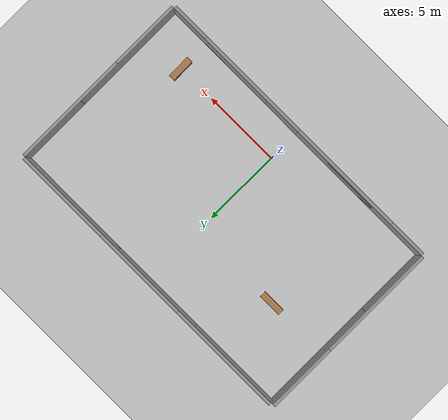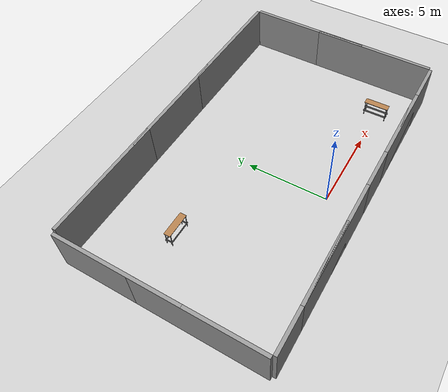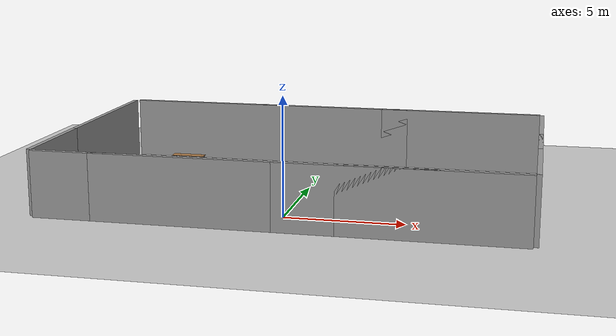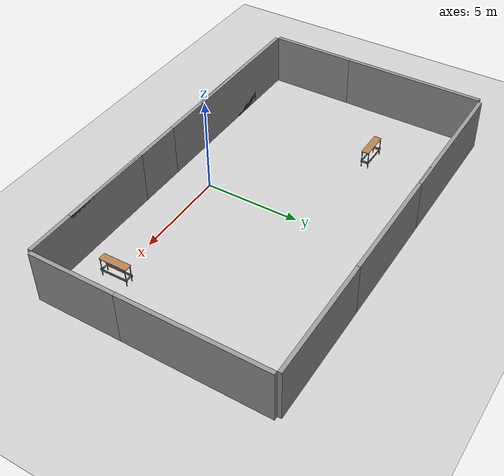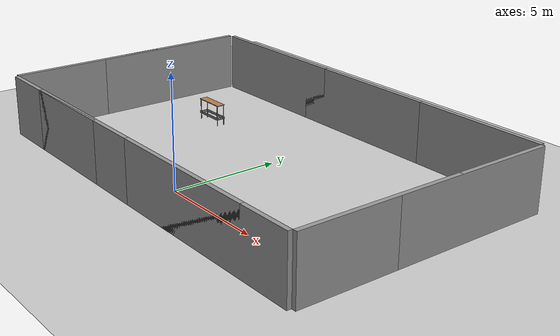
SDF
<sdf version="1.6">
 <world name="default">
  <plugin name="gazebo_occupancy_map" filename="libgazebo_2Dmap_plugin.so">
   <map_resolution>0.1</map_resolution>
   <map_height>2.8</map_height>
   <map_size_x>20</map_size_x>
   <map_size_y>20</map_size_y>
   <init_robot_x>0</init_robot_x>
   <init_robot_y>4</init_robot_y>
  </plugin>
  <light name="sun" type="directional">
   <cast_shadows>0</cast_shadows>
   <pose>0 0 10 0 -0 0</pose>
   <diffuse>0.8 0.8 0.8 1</diffuse>
   <specular>0.2 0.2 0.2 1</specular>
   <attenuation>
    <range>1000</range>
    <constant>0.9</constant>
    <linear>0.01</linear>
    <quadratic>0.001</quadratic>
   </attenuation>
   <direction>-0.5 0.1 -0.9</direction>
  </light>
  <model name="ground_plane">
   <static>1</static>
   <link name="link">
    <collision name="collision">
     <geometry><plane><normal>0 0 1</normal><size>100 100</size></plane></geometry>
     <surface>
      <contact><collide_bitmask>65535</collide_bitmask></contact>
      <friction><ode><mu>100</mu><mu2>50</mu2></ode></friction>
     </surface>
    </collision>
    <visual name="visual">
     <cast_shadows>0</cast_shadows>
     <geometry><plane><normal>0 0 1</normal><size>100 100</size></plane></geometry>
     <material>
      <script><uri>file://media/materials/scripts/gazebo.material</uri><name>Gazebo/Grey</name></script>
     </material>
    </visual>
   </link>
  </model>
  <gravity>0 0 -9.8</gravity>
  <magnetic_field>6e-06 2.3e-05 -4.2e-05</magnetic_field>
  <atmosphere type="adiabatic"/>
  <physics name="default_physics" default="0" type="ode">
   <max_step_size>0.001</max_step_size>
   <real_time_factor>1</real_time_factor>
   <real_time_update_rate>1000</real_time_update_rate>
  </physics>
  <scene><ambient>0.4 0.4 0.4 1</ambient><background>0.7 0.7 0.7 1</background><shadows>0</shadows></scene>
  <audio><device>default</device></audio>
  <spherical_coordinates>
   <surface_model>EARTH_WGS84</surface_model>
   <latitude_deg>0</latitude_deg>
   <longitude_deg>0</longitude_deg>
   <elevation>0</elevation>
   <heading_deg>0</heading_deg>
  </spherical_coordinates>
  <model name="grey_wall">
   <static>1</static>
   <link name="link">
    <pose>0 0 1.4 0 -0 0</pose>
    <collision name="collision"><geometry><box><size>7.5 0.2 2.8</size></box></geometry></collision>
    <visual name="visual">
     <cast_shadows>0</cast_shadows>
     <geometry><box><size>7.5 0.2 2.8</size></box></geometry>
     <material>
      <script>
       <uri>model://grey_wall/materials/scripts</uri>
       <uri>model://grey_wall/materials/textures</uri>
       <name>vrc/grey_wall</name>
      </script>
     </material>
    </visual>
   </link>
   <pose>-3.75 -2.1 0 0 -0 0</pose>
  </model>
  <model name="grey_wall_0">
   <static>1</static>
   <link name="link">
    <pose>0 0 1.4 0 -0 0</pose>
    <collision name="collision"><geometry><box><size>7.5 0.2 2.8</size></box></geometry></collision>
    <visual name="visual">
     <cast_shadows>0</cast_shadows>
     <geometry><box><size>7.5 0.2 2.8</size></box></geometry>
     <material>
      <script>
       <uri>model://grey_wall/materials/scripts</uri>
       <uri>model://grey_wall/materials/textures</uri>
       <name>vrc/grey_wall</name>
      </script>
     </material>
    </visual>
   </link>
   <pose>3.75 -2.1 0 0 -0 0</pose>
  </model>
  <model name="grey_wall_1">
   <static>1</static>
   <link name="link">
    <pose>0 0 1.4 0 -0 0</pose>
    <collision name="collision"><geometry><box><size>7.5 0.2 2.8</size></box></geometry></collision>
    <visual name="visual">
     <cast_shadows>0</cast_shadows>
     <geometry><box><size>7.5 0.2 2.8</size></box></geometry>
     <material>
      <script>
       <uri>model://grey_wall/materials/scripts</uri>
       <uri>model://grey_wall/materials/textures</uri>
       <name>vrc/grey_wall</name>
      </script>
     </material>
    </visual>
   </link>
   <pose>-6.25 -2.1 0 0 -0 0</pose>
  </model>
  <model name="grey_wall_2">
   <static>1</static>
   <link name="link">
    <pose>0 0 1.4 0 -0 0</pose>
    <collision name="collision"><geometry><box><size>7.5 0.2 2.8</size></box></geometry></collision>
    <visual name="visual">
     <cast_shadows>0</cast_shadows>
     <geometry><box><size>7.5 0.2 2.8</size></box></geometry>
     <material>
      <script>
       <uri>model://grey_wall/materials/scripts</uri>
       <uri>model://grey_wall/materials/textures</uri>
       <name>vrc/grey_wall</name>
      </script>
     </material>
    </visual>
   </link>
   <pose>6.25 -2.1 0 0 -0 0</pose>
  </model>
  <model name="grey_wall_3">
   <static>1</static>
   <link name="link">
    <pose>0 0 1.4 0 -0 0</pose>
    <collision name="collision"><geometry><box><size>7.5 0.2 2.8</size></box></geometry></collision>
    <visual name="visual">
     <cast_shadows>0</cast_shadows>
     <geometry><box><size>7.5 0.2 2.8</size></box></geometry>
     <material>
      <script>
       <uri>model://grey_wall/materials/scripts</uri>
       <uri>model://grey_wall/materials/textures</uri>
       <name>vrc/grey_wall</name>
      </script>
     </material>
    </visual>
   </link>
   <pose>-10.1 1.75 0 0 -0 1.5708</pose>
  </model>
  <model name="grey_wall_3_clone">
   <static>1</static>
   <link name="link">
    <pose>0 0 1.4 0 -0 0</pose>
    <collision name="collision"><geometry><box><size>7.5 0.2 2.8</size></box></geometry></collision>
    <visual name="visual">
     <cast_shadows>0</cast_shadows>
     <geometry><box><size>7.5 0.2 2.8</size></box></geometry>
     <material>
      <script>
       <uri>model://grey_wall/materials/scripts</uri>
       <uri>model://grey_wall/materials/textures</uri>
       <name>vrc/grey_wall</name>
      </script>
     </material>
    </visual>
   </link>
   <pose>-10.1 6.25 0 0 -0 1.5708</pose>
  </model>
  <model name="grey_wall_3_clone_clone">
   <static>1</static>
   <link name="link">
    <pose>0 0 1.4 0 -0 0</pose>
    <collision name="collision"><geometry><box><size>7.5 0.2 2.8</size></box></geometry></collision>
    <visual name="visual">
     <cast_shadows>0</cast_shadows>
     <geometry><box><size>7.5 0.2 2.8</size></box></geometry>
     <material>
      <script>
       <uri>model://grey_wall/materials/scripts</uri>
       <uri>model://grey_wall/materials/textures</uri>
       <name>vrc/grey_wall</name>
      </script>
     </material>
    </visual>
   </link>
   <pose>10.1 6.25 0 0 -0 1.5708</pose>
  </model>
  <model name="grey_wall_3_clone_clone_0">
   <static>1</static>
   <link name="link">
    <pose>0 0 1.4 0 -0 0</pose>
    <collision name="collision"><geometry><box><size>7.5 0.2 2.8</size></box></geometry></collision>
    <visual name="visual">
     <cast_shadows>0</cast_shadows>
     <geometry><box><size>7.5 0.2 2.8</size></box></geometry>
     <material>
      <script>
       <uri>model://grey_wall/materials/scripts</uri>
       <uri>model://grey_wall/materials/textures</uri>
       <name>vrc/grey_wall</name>
      </script>
     </material>
    </visual>
   </link>
   <pose>10.1 1.75 0 0 -0 1.5708</pose>
  </model>
  <model name="grey_wall_1_clone">
   <static>1</static>
   <link name="link">
    <pose>0 0 1.4 0 -0 0</pose>
    <collision name="collision"><geometry><box><size>7.5 0.2 2.8</size></box></geometry></collision>
    <visual name="visual">
     <cast_shadows>0</cast_shadows>
     <geometry><box><size>7.5 0.2 2.8</size></box></geometry>
     <material>
      <script>
       <uri>model://grey_wall/materials/scripts</uri>
       <uri>model://grey_wall/materials/textures</uri>
       <name>vrc/grey_wall</name>
      </script>
     </material>
    </visual>
   </link>
   <pose>-6.15 10.1 0 0 -0 0</pose>
  </model>
  <model name="grey_wall_clone">
   <static>1</static>
   <link name="link">
    <pose>0 0 1.4 0 -0 0</pose>
    <collision name="collision"><geometry><box><size>7.5 0.2 2.8</size></box></geometry></collision>
    <visual name="visual">
     <cast_shadows>0</cast_shadows>
     <geometry><box><size>7.5 0.2 2.8</size></box></geometry>
     <material>
      <script>
       <uri>model://grey_wall/materials/scripts</uri>
       <uri>model://grey_wall/materials/textures</uri>
       <name>vrc/grey_wall</name>
      </script>
     </material>
    </visual>
   </link>
   <pose>0 10.1 0 0 -0 0</pose>
  </model>
  <model name="grey_wall_clone_0">
   <static>1</static>
   <link name="link">
    <pose>0 0 1.4 0 -0 0</pose>
    <collision name="collision"><geometry><box><size>7.5 0.2 2.8</size></box></geometry></collision>
    <visual name="visual">
     <cast_shadows>0</cast_shadows>
     <geometry><box><size>7.5 0.2 2.8</size></box></geometry>
     <material>
      <script>
       <uri>model://grey_wall/materials/scripts</uri>
       <uri>model://grey_wall/materials/textures</uri>
       <name>vrc/grey_wall</name>
      </script>
     </material>
    </visual>
   </link>
   <pose>6.25 10.1 0 0 -0 0</pose>
  </model>
  <model name="table_0">
   <static>1</static>
   <link name="link">
    <collision name="surface">
     <pose>0 0 1 0 -0 0</pose>
     <geometry><box><size>1.5 0.4 0.03</size></box></geometry>
     <surface><friction><ode><mu>0.6</mu><mu2>0.6</mu2></ode></friction></surface>
    </collision>
    <visual name="visual1">
     <pose>0 0 1 0 -0 0</pose>
     <geometry><box><size>1.5 0.4 0.03</size></box></geometry>
     <material>
      <script><uri>file://media/materials/scripts/gazebo.material</uri><name>Gazebo/Wood</name></script>
     </material>
    </visual>
    <collision name="front_left_leg">
     <pose>0.68 0.18 0.5 0 -0 0</pose>
     <geometry><cylinder><radius>0.02</radius><length>1</length></cylinder></geometry>
    </collision>
    <visual name="front_left_leg">
     <pose>0.68 0.18 0.5 0 -0 0</pose>
     <geometry><cylinder><radius>0.02</radius><length>1</length></cylinder></geometry>
     <material>
      <script><uri>file://media/materials/scripts/gazebo.material</uri><name>Gazebo/Grey</name></script>
     </material>
    </visual>
    <collision name="front_right_leg">
     <pose>0.68 -0.18 0.5 0 -0 0</pose>
     <geometry><cylinder><radius>0.02</radius><length>1</length></cylinder></geometry>
    </collision>
    <visual name="front_right_leg">
     <pose>0.68 -0.18 0.5 0 -0 0</pose>
     <geometry><cylinder><radius>0.02</radius><length>1</length></cylinder></geometry>
     <material>
      <script><uri>file://media/materials/scripts/gazebo.material</uri><name>Gazebo/Grey</name></script>
     </material>
    </visual>
    <collision name="back_right_leg">
     <pose>-0.68 -0.18 0.5 0 -0 0</pose>
     <geometry><cylinder><radius>0.02</radius><length>1</length></cylinder></geometry>
    </collision>
    <visual name="back_right_leg">
     <pose>-0.68 -0.18 0.5 0 -0 0</pose>
     <geometry><cylinder><radius>0.02</radius><length>1</length></cylinder></geometry>
     <material>
      <script><uri>file://media/materials/scripts/gazebo.material</uri><name>Gazebo/Grey</name></script>
     </material>
    </visual>
    <collision name="back_left_leg">
     <pose>-0.68 0.18 0.5 0 -0 0</pose>
     <geometry><cylinder><radius>0.02</radius><length>1</length></cylinder></geometry>
    </collision>
    <visual name="back_left_leg">
     <pose>-0.68 0.18 0.5 0 -0 0</pose>
     <geometry><cylinder><radius>0.02</radius><length>1</length></cylinder></geometry>
     <material>
      <script><uri>file://media/materials/scripts/gazebo.material</uri><name>Gazebo/Grey</name></script>
     </material>
    </visual>
    <collision name="back_leg_connector">
     <pose>0 -0.19 0.38 0 1.57 0</pose>
     <geometry><cylinder><radius>0.02</radius><length>1.5</length></cylinder></geometry>
    </collision>
    <visual name="back_leg_connector">
     <pose>0 -0.19 0.38 0 1.57 0</pose>
     <geometry><cylinder><radius>0.02</radius><length>1.5</length></cylinder></geometry>
     <material>
      <script><uri>file://media/materials/scripts/gazebo.material</uri><name>Gazebo/Grey</name></script>
     </material>
    </visual>
    <collision name="front_leg_connector">
     <pose>0 0.19 0.38 0 1.57 0</pose>
     <geometry><cylinder><radius>0.02</radius><length>1.5</length></cylinder></geometry>
    </collision>
    <visual name="front_leg_connector">
     <pose>0 0.19 0.38 0 1.57 0</pose>
     <geometry><cylinder><radius>0.02</radius><length>1.5</length></cylinder></geometry>
     <material>
      <script><uri>file://media/materials/scripts/gazebo.material</uri><name>Gazebo/Grey</name></script>
     </material>
    </visual>
    <collision name="right_leg_connector">
     <pose>-0.68 0 0.38 0 1.57 1.57</pose>
     <geometry><cylinder><radius>0.02</radius><length>0.36</length></cylinder></geometry>
    </collision>
    <visual name="right_leg_connector">
     <pose>-0.68 0 0.38 0 1.57 1.57</pose>
     <geometry><cylinder><radius>0.02</radius><length>0.36</length></cylinder></geometry>
     <material>
      <script><uri>file://media/materials/scripts/gazebo.material</uri><name>Gazebo/Grey</name></script>
     </material>
    </visual>
    <collision name="left_leg_connector">
     <pose>0.68 0 0.38 0 1.57 1.57</pose>
     <geometry><cylinder><radius>0.02</radius><length>0.36</length></cylinder></geometry>
    </collision>
    <visual name="left_leg_connector">
     <pose>0.68 0 0.38 0 1.57 1.57</pose>
     <geometry><cylinder><radius>0.02</radius><length>0.36</length></cylinder></geometry>
     <material>
      <script><uri>file://media/materials/scripts/gazebo.material</uri><name>Gazebo/Grey</name></script>
     </material>
    </visual>
    <collision name="back_leg_connector1">
     <pose>0 -0.19 0.3 0 1.57 0</pose>
     <geometry><cylinder><radius>0.02</radius><length>1.5</length></cylinder></geometry>
    </collision>
    <visual name="back_leg_connector1">
     <pose>0 -0.19 0.3 0 1.57 0</pose>
     <geometry><cylinder><radius>0.02</radius><length>1.5</length></cylinder></geometry>
     <material>
      <script><uri>file://media/materials/scripts/gazebo.material</uri><name>Gazebo/Grey</name></script>
     </material>
    </visual>
    <collision name="front_leg_connector1">
     <pose>0 0.19 0.3 0 1.57 0</pose>
     <geometry><cylinder><radius>0.02</radius><length>1.5</length></cylinder></geometry>
    </collision>
    <visual name="front_leg_connector1">
     <pose>0 0.19 0.3 0 1.57 0</pose>
     <geometry><cylinder><radius>0.02</radius><length>1.5</length></cylinder></geometry>
     <material>
      <script><uri>file://media/materials/scripts/gazebo.material</uri><name>Gazebo/Grey</name></script>
     </material>
    </visual>
    <collision name="right_leg_connector1">
     <pose>-0.68 0 0.3 0 1.57 1.57</pose>
     <geometry><cylinder><radius>0.02</radius><length>0.36</length></cylinder></geometry>
    </collision>
    <visual name="right_leg_connector1">
     <pose>-0.68 0 0.3 0 1.57 1.57</pose>
     <geometry><cylinder><radius>0.02</radius><length>0.36</length></cylinder></geometry>
     <material>
      <script><uri>file://media/materials/scripts/gazebo.material</uri><name>Gazebo/Grey</name></script>
     </material>
    </visual>
    <collision name="left_leg_connector1">
     <pose>0.68 0 0.3 0 1.57 1.57</pose>
     <geometry><cylinder><radius>0.02</radius><length>0.36</length></cylinder></geometry>
    </collision>
    <visual name="left_leg_connector1">
     <pose>0.68 0 0.3 0 1.57 1.57</pose>
     <geometry><cylinder><radius>0.02</radius><length>0.36</length></cylinder></geometry>
     <material>
      <script><uri>file://media/materials/scripts/gazebo.material</uri><name>Gazebo/Grey</name></script>
     </material>
    </visual>
   </link>
   <pose>-6 6 0 0 -0 0</pose>
  </model>
  <model name="table_0_clone">
   <static>1</static>
   <link name="link">
    <collision name="surface">
     <pose>0 0 1 0 -0 0</pose>
     <geometry><box><size>1.5 0.4 0.03</size></box></geometry>
     <surface><friction><ode><mu>0.6</mu><mu2>0.6</mu2></ode></friction></surface>
    </collision>
    <visual name="visual1">
     <pose>0 0 1 0 -0 0</pose>
     <geometry><box><size>1.5 0.4 0.03</size></box></geometry>
     <material>
      <script><uri>file://media/materials/scripts/gazebo.material</uri><name>Gazebo/Wood</name></script>
     </material>
    </visual>
    <collision name="front_left_leg">
     <pose>0.68 0.18 0.5 0 -0 0</pose>
     <geometry><cylinder><radius>0.02</radius><length>1</length></cylinder></geometry>
    </collision>
    <visual name="front_left_leg">
     <pose>0.68 0.18 0.5 0 -0 0</pose>
     <geometry><cylinder><radius>0.02</radius><length>1</length></cylinder></geometry>
     <material>
      <script><uri>file://media/materials/scripts/gazebo.material</uri><name>Gazebo/Grey</name></script>
     </material>
    </visual>
    <collision name="front_right_leg">
     <pose>0.68 -0.18 0.5 0 -0 0</pose>
     <geometry><cylinder><radius>0.02</radius><length>1</length></cylinder></geometry>
    </collision>
    <visual name="front_right_leg">
     <pose>0.68 -0.18 0.5 0 -0 0</pose>
     <geometry><cylinder><radius>0.02</radius><length>1</length></cylinder></geometry>
     <material>
      <script><uri>file://media/materials/scripts/gazebo.material</uri><name>Gazebo/Grey</name></script>
     </material>
    </visual>
    <collision name="back_right_leg">
     <pose>-0.68 -0.18 0.5 0 -0 0</pose>
     <geometry><cylinder><radius>0.02</radius><length>1</length></cylinder></geometry>
    </collision>
    <visual name="back_right_leg">
     <pose>-0.68 -0.18 0.5 0 -0 0</pose>
     <geometry><cylinder><radius>0.02</radius><length>1</length></cylinder></geometry>
     <material>
      <script><uri>file://media/materials/scripts/gazebo.material</uri><name>Gazebo/Grey</name></script>
     </material>
    </visual>
    <collision name="back_left_leg">
     <pose>-0.68 0.18 0.5 0 -0 0</pose>
     <geometry><cylinder><radius>0.02</radius><length>1</length></cylinder></geometry>
    </collision>
    <visual name="back_left_leg">
     <pose>-0.68 0.18 0.5 0 -0 0</pose>
     <geometry><cylinder><radius>0.02</radius><length>1</length></cylinder></geometry>
     <material>
      <script><uri>file://media/materials/scripts/gazebo.material</uri><name>Gazebo/Grey</name></script>
     </material>
    </visual>
    <collision name="back_leg_connector">
     <pose>0 -0.19 0.38 0 1.57 0</pose>
     <geometry><cylinder><radius>0.02</radius><length>1.5</length></cylinder></geometry>
    </collision>
    <visual name="back_leg_connector">
     <pose>0 -0.19 0.38 0 1.57 0</pose>
     <geometry><cylinder><radius>0.02</radius><length>1.5</length></cylinder></geometry>
     <material>
      <script><uri>file://media/materials/scripts/gazebo.material</uri><name>Gazebo/Grey</name></script>
     </material>
    </visual>
    <collision name="front_leg_connector">
     <pose>0 0.19 0.38 0 1.57 0</pose>
     <geometry><cylinder><radius>0.02</radius><length>1.5</length></cylinder></geometry>
    </collision>
    <visual name="front_leg_connector">
     <pose>0 0.19 0.38 0 1.57 0</pose>
     <geometry><cylinder><radius>0.02</radius><length>1.5</length></cylinder></geometry>
     <material>
      <script><uri>file://media/materials/scripts/gazebo.material</uri><name>Gazebo/Grey</name></script>
     </material>
    </visual>
    <collision name="right_leg_connector">
     <pose>-0.68 0 0.38 0 1.57 1.57</pose>
     <geometry><cylinder><radius>0.02</radius><length>0.36</length></cylinder></geometry>
    </collision>
    <visual name="right_leg_connector">
     <pose>-0.68 0 0.38 0 1.57 1.57</pose>
     <geometry><cylinder><radius>0.02</radius><length>0.36</length></cylinder></geometry>
     <material>
      <script><uri>file://media/materials/scripts/gazebo.material</uri><name>Gazebo/Grey</name></script>
     </material>
    </visual>
    <collision name="left_leg_connector">
     <pose>0.68 0 0.38 0 1.57 1.57</pose>
     <geometry><cylinder><radius>0.02</radius><length>0.36</length></cylinder></geometry>
    </collision>
    <visual name="left_leg_connector">
     <pose>0.68 0 0.38 0 1.57 1.57</pose>
     <geometry><cylinder><radius>0.02</radius><length>0.36</length></cylinder></geometry>
     <material>
      <script><uri>file://media/materials/scripts/gazebo.material</uri><name>Gazebo/Grey</name></script>
     </material>
    </visual>
    <collision name="back_leg_connector1">
     <pose>0 -0.19 0.3 0 1.57 0</pose>
     <geometry><cylinder><radius>0.02</radius><length>1.5</length></cylinder></geometry>
    </collision>
    <visual name="back_leg_connector1">
     <pose>0 -0.19 0.3 0 1.57 0</pose>
     <geometry><cylinder><radius>0.02</radius><length>1.5</length></cylinder></geometry>
     <material>
      <script><uri>file://media/materials/scripts/gazebo.material</uri><name>Gazebo/Grey</name></script>
     </material>
    </visual>
    <collision name="front_leg_connector1">
     <pose>0 0.19 0.3 0 1.57 0</pose>
     <geometry><cylinder><radius>0.02</radius><length>1.5</length></cylinder></geometry>
    </collision>
    <visual name="front_leg_connector1">
     <pose>0 0.19 0.3 0 1.57 0</pose>
     <geometry><cylinder><radius>0.02</radius><length>1.5</length></cylinder></geometry>
     <material>
      <script><uri>file://media/materials/scripts/gazebo.material</uri><name>Gazebo/Grey</name></script>
     </material>
    </visual>
    <collision name="right_leg_connector1">
     <pose>-0.68 0 0.3 0 1.57 1.57</pose>
     <geometry><cylinder><radius>0.02</radius><length>0.36</length></cylinder></geometry>
    </collision>
    <visual name="right_leg_connector1">
     <pose>-0.68 0 0.3 0 1.57 1.57</pose>
     <geometry><cylinder><radius>0.02</radius><length>0.36</length></cylinder></geometry>
     <material>
      <script><uri>file://media/materials/scripts/gazebo.material</uri><name>Gazebo/Grey</name></script>
     </material>
    </visual>
    <collision name="left_leg_connector1">
     <pose>0.68 0 0.3 0 1.57 1.57</pose>
     <geometry><cylinder><radius>0.02</radius><length>0.36</length></cylinder></geometry>
    </collision>
    <visual name="left_leg_connector1">
     <pose>0.68 0 0.3 0 1.57 1.57</pose>
     <geometry><cylinder><radius>0.02</radius><length>0.36</length></cylinder></geometry>
     <material>
      <script><uri>file://media/materials/scripts/gazebo.material</uri><name>Gazebo/Grey</name></script>
     </material>
    </visual>
   </link>
   <pose>7.43398 0.088086 0 0 -0 1.58518</pose>
  </model>
 </world>
</sdf>
